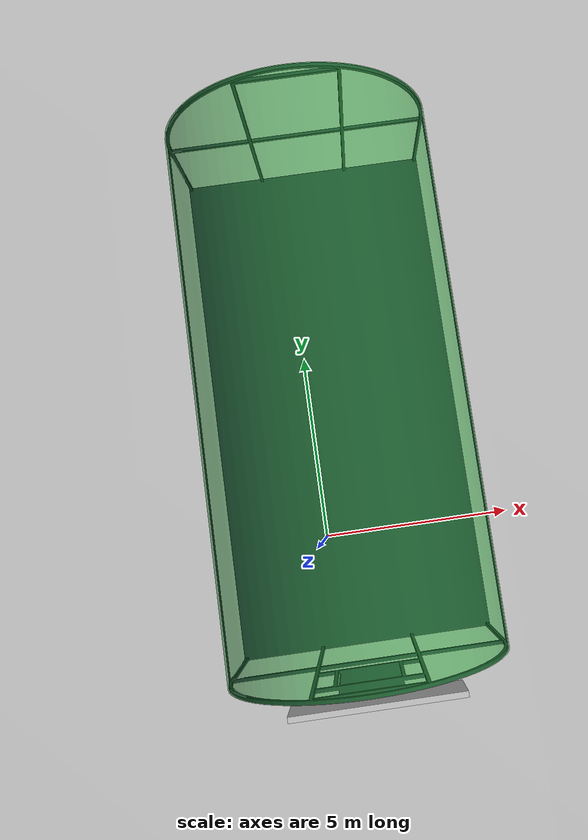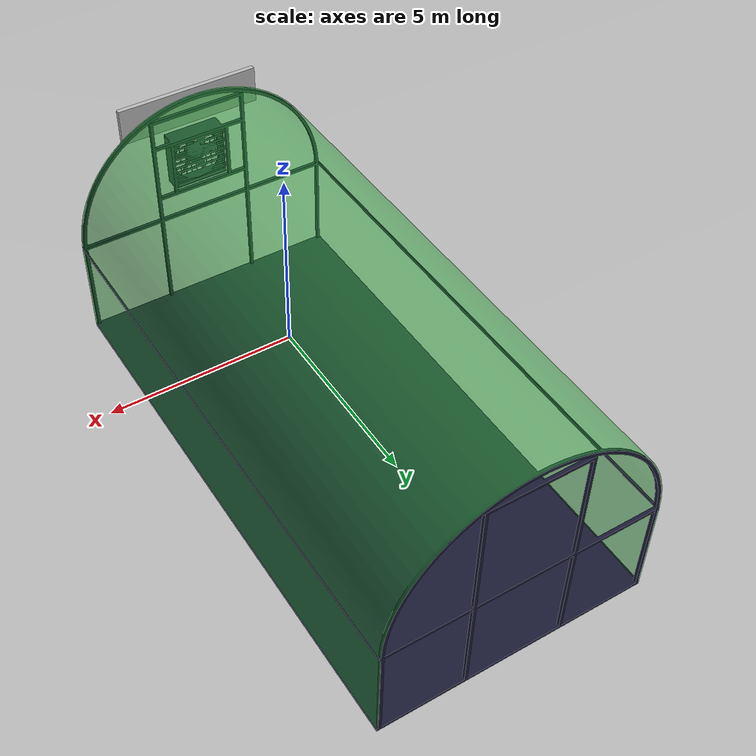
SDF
<?xml version="1.0"?>
<sdf version="1.6">
  <world name="default">
<grid>false</grid>
    <physics type="ode">
      <max_step_size>0.004</max_step_size>
      <real_time_factor>1</real_time_factor>
      <real_time_update_rate>250</real_time_update_rate>
      <ode>
        <solver>
          <iters>50</iters>
          <island_threads>4</island_threads>
        </solver>
      </ode>
    </physics>

    <scene>
      <shadows>false</shadows>
      <grid>false</grid>
      <sky>
        <clouds>
          <speed>4</speed>
        </clouds>
      </sky>
    </scene>

  <include>
      <uri>model://farm1</uri>
<pose>1.424045 -8.25 0.15 -0.02 0.029 0</pose>
    </include>

    <include>
      <uri>model://green_house</uri>
<pose>10.523 -2.987 0.1 -1.57 -3.14 0</pose>
    </include>

  </world>
</sdf>

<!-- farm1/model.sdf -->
<sdf version="1.6">
  <model name="farm">
    <static>true</static>
    <link name="link">
      <collision name="colision1">
        <pose>0 0 0 0 0 0 </pose>
          <geometry>
            <box><size>2.32 1 1</size></box>
          </geometry>

      </collision>

      <visual name="visual1">
        <cast_shadows>false</cast_shadows>
	<pose> 0 0 0 0 0 0</pose>
        <geometry>
          <mesh>
            <uri>model://farm1/meshes/agriculture_world.dae</uri>

          </mesh>
        </geometry>
      </visual>

    </link>
  </model>
</sdf>

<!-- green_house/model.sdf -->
<sdf version="1.6">
  <model name="green_house">
    <static>true</static>

    <link name="link">
      <collision name="collision">
        <geometry>
          <mesh>
             <scale>0.001 0.001 0.001</scale>
            <uri>file://green_house/meshes/greenhouse_eyantra_glass.stl</uri>
          </mesh>
        </geometry>
      </collision>
      <visual name="branch">
        <geometry>
          <mesh>
                <scale>0.001 0.001 0.001</scale>
            <uri>file://green_house/meshes/greenhouse_eyantra_glass.stl</uri>

          </mesh>
        </geometry>

<material>
  <script>
    <name>Gazebo/GreenTransparent</name>
    <uri>file://media/materials/scripts/gazebo.material</uri>
  </script>
</material>

      </visual>
    </link>

    <link name="link2">
      <collision name="collision2">
        <geometry>
          <mesh>
             <scale>0.001 0.001 0.001</scale>
            <uri>file://green_house/meshes/greenhouse_eyantra_skeleton.stl</uri>
          </mesh>
        </geometry>
      </collision>
      <visual name="branch2">
        <geometry>
          <mesh>
                <scale>0.001 0.001 0.001</scale>
            <uri>file://green_house/meshes/greenhouse_eyantra_skeleton.stl</uri>

          </mesh>
        </geometry>

      <material>
          <ambient>0.1 0.1 0.1 1</ambient>
          <diffuse>0.1 0.1 0.2 1</diffuse>
          <specular>0 0 0 0</specular>
          <emissive>0 0 0 1</emissive>
        </material>

      </visual>
    </link>

    <link name="link3">
 <pose>9.7 5.5 -0.2 0 3.14 0</pose>
      <collision name="logo">
        <geometry>
          <mesh>
       <scale>400 400 400</scale>
            <uri>file://green_house/meshes/logo2.dae</uri>
          </mesh>
        </geometry>
      </collision>
      <visual name="logo_c">
        <geometry>
          <mesh>
  <scale>400 400 400</scale>
            <uri>file://green_house/meshes/logo2.dae</uri>

          </mesh>
        </geometry>

      </visual>
    </link>

        <joint name="logo" type="fixed">
            <pose>0 0 0 0 0 0</pose>
            <child>link3</child>
            <parent>link2</parent>

        </joint>

  </model>
</sdf>
